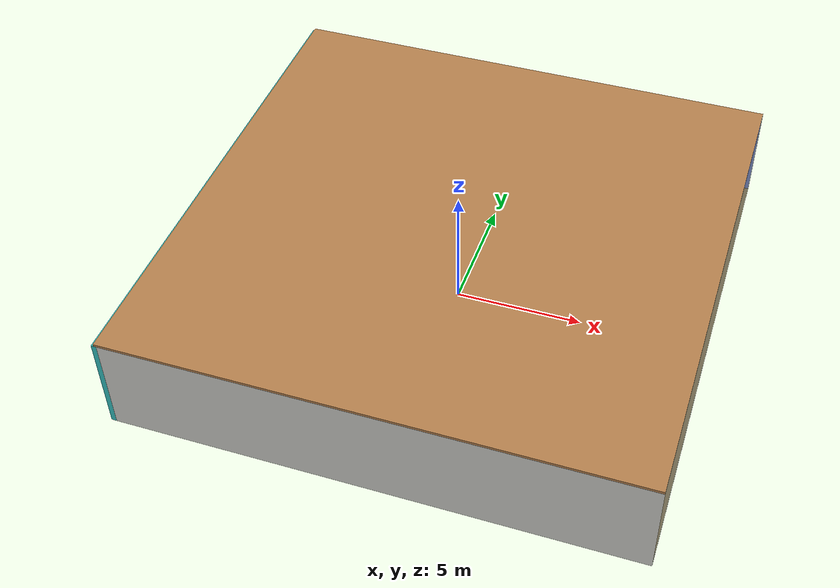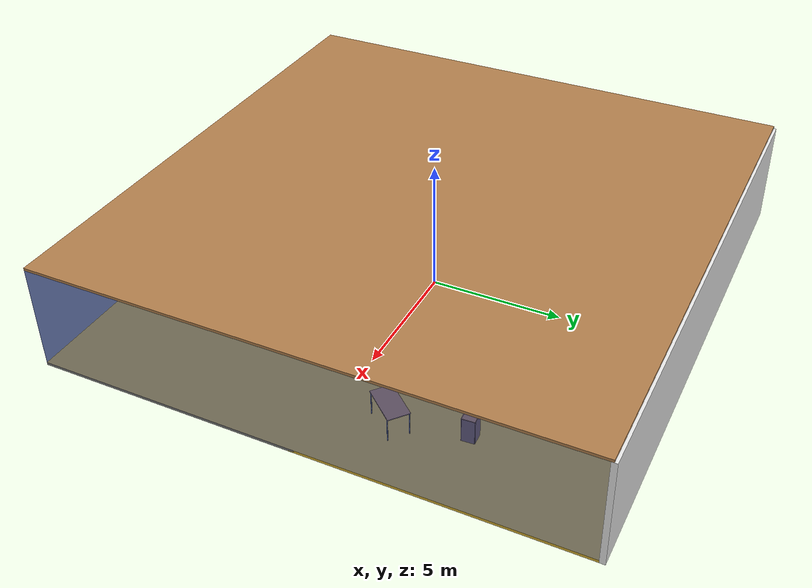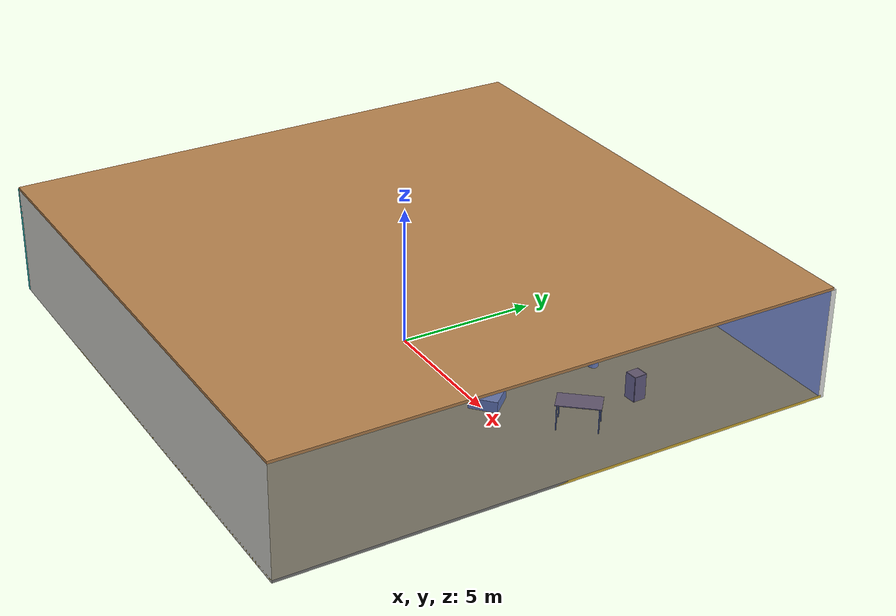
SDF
<sdf version="1.4">
 <world name="default">
  <physics type="ode">
   <max_step_size>0.001</max_step_size>
   <real_time_factor>1</real_time_factor>
   <real_time_update_rate>1000</real_time_update_rate>
   <gravity>0 0 -9.8</gravity>
  </physics>
  <scene><ambient>0.4 0.4 0.4 1</ambient><background>0.7 0.7 0.7 1</background><shadows>1</shadows></scene>
  <model name="Surrounding">
   <static>1</static>
   <link name="Ceiling">
    <collision name="Ceiling_Collision"><geometry><box><size>20 20 0.1</size></box></geometry></collision>
    <visual name="Ceiling_Visual">
     <geometry><box><size>20 20 0.1</size></box></geometry>
     <material>
      <script><uri>file://media/materials/scripts/gazebo.material</uri><name>Gazebo/WoodPallet</name></script>
     </material>
    </visual>
    <pose>0 0 4.05 0 0 0</pose>
   </link>
   <link name="Wall_South">
    <collision name="Wall_South_Collision">
     <geometry><box><size>20 0 4</size></box></geometry>
     <pose>0 0 2 0 -0 0</pose>
    </collision>
    <visual name="Wall_South_Visual">
     <pose>0 0 2 0 -0 0</pose>
     <geometry><box><size>20 0 4</size></box></geometry>
     <material>
      <script><uri>file://media/materials/scripts/gazebo.material</uri><name>Gazebo/CeilingTiled</name></script>
     </material>
    </visual>
    <velocity_decay><linear>0</linear><angular>0</angular></velocity_decay>
    <pose>0 -10 0 0 -0 0</pose>
   </link>
   <link name="Wall_East">
    <collision name="Wall_21_Collision">
     <geometry><box><size>20 0 4</size></box></geometry>
     <pose>0 0 2 0 -0 0</pose>
    </collision>
    <visual name="Wall_21_Visual">
     <pose>0 0 2 0 -0 0</pose>
     <geometry><box><size>20 0 4</size></box></geometry>
     <material>
      <script><uri>file://media/materials/scripts/gazebo.material</uri><name>Gazebo/BlueTransparent</name></script>
     </material>
    </visual>
    <velocity_decay><linear>0</linear><angular>0</angular></velocity_decay>
    <pose>10 0 0 0 -0 1.5708</pose>
   </link>
   <link name="Wall_North">
    <collision name="Wall_22_Collision">
     <geometry><box><size>20 0.2 4</size></box></geometry>
     <pose>0 0 2 0 -0 0</pose>
    </collision>
    <visual name="Wall_22_Visual">
     <pose>0 0 2 0 -0 0</pose>
     <geometry><box><size>20 0.2 4</size></box></geometry>
     <material>
      <script><uri>file://media/materials/scripts/gazebo.material</uri><name>Gazebo/White</name></script>
     </material>
    </visual>
    <velocity_decay><linear>0</linear><angular>0</angular></velocity_decay>
    <pose>0 10 0 0 -0 0</pose>
   </link>
   <link name="Wall_West">
    <collision name="Wall_23_Collision">
     <geometry><box><size>20 0.2 4</size></box></geometry>
     <pose>0 0 2 0 -0 0</pose>
    </collision>
    <visual name="Wall_23_Visual">
     <pose>0 0 2 0 -0 0</pose>
     <geometry><box><size>20 0.2 4</size></box></geometry>
     <material>
      <script>
       <uri>file://media/materials/scripts/gazebo.material</uri>
       <name>Gazebo/TurquoiseGlowOutline</name>
      </script>
     </material>
    </visual>
    <velocity_decay><linear>0</linear><angular>0</angular></velocity_decay>
    <pose>-10 0 0 0 0 -1.5708</pose>
   </link>
   <link name="Ground_link">
    <collision name="collision">
     <pose>0 0 .05 0 -0 0</pose>
     <geometry><box><size>20 20 0.1</size></box></geometry>
    </collision>
    <visual name="visual">
     <pose>0 0 .05 0 -0 0</pose>
     <geometry><box><size>20 20 0.1</size></box></geometry>
     <material>
      <script><uri>file://media/materials/scripts/gazebo.material</uri><name>Gazebo/Gold</name></script>
     </material>
    </visual>
   </link>
   <static>1</static>
  </model>
  <spherical_coordinates>
   <surface_model>EARTH_WGS84</surface_model>
   <latitude_deg>0</latitude_deg>
   <longitude_deg>0</longitude_deg>
   <elevation>0</elevation>
   <heading_deg>0</heading_deg>
  </spherical_coordinates>
  <light name="lightball_0" type="diffuse">
   <diffuse>0.8 0.8 0.8 1</diffuse>
   <specular>0.2 0.2 0.2 1</specular>
   <attenuation>
    <range>100</range>
    <constant>0.7</constant>
    <linear>0.01</linear>
    <quadratic>0.001</quadratic>
   </attenuation>
   <direction>-0.5 0.1 -0.9</direction>
   <pose>7.9216599291 -3.42829957828 1.21490017486 0 0 0</pose>
  </light>
  <light name="lightball_1" type="diffuse">
   <diffuse>0.8 0.8 0.8 1</diffuse>
   <specular>0.2 0.2 0.2 1</specular>
   <attenuation>
    <range>100</range>
    <constant>0.7</constant>
    <linear>0.01</linear>
    <quadratic>0.001</quadratic>
   </attenuation>
   <direction>-0.5 0.1 -0.9</direction>
   <pose>0.111879037403 3.92854694773 3.71542368981 0 0 0</pose>
  </light>
  <light name="lightball_2" type="diffuse">
   <diffuse>0.8 0.8 0.8 1</diffuse>
   <specular>0.2 0.2 0.2 1</specular>
   <attenuation>
    <range>100</range>
    <constant>0.7</constant>
    <linear>0.01</linear>
    <quadratic>0.001</quadratic>
   </attenuation>
   <direction>-0.5 0.1 -0.9</direction>
   <pose>8.20297761521 4.31723876829 1.59319214894 0 0 0</pose>
  </light>
  <include><uri>model://cabinet</uri><pose>-7.79218675732 -7.67870573694 0 0 0 0.850429992638</pose></include>
  <include>
   <uri>model://robocup_3Dsim_goal</uri>
   <pose>-7.53696927483 -1.12120166482 0 0 0 1.50885212092</pose>
  </include>
  <include>
   <uri>model://textured_shapes</uri>
   <pose>-0.795530012375 5.21214372814 0 0 0 1.58975417234</pose>
  </include>
  <include><uri>model://cabinet</uri><pose>1.01799473369 -4.45739391129 0 0 0 0.894933445035</pose></include>
  <include><uri>model://table</uri><pose>2.15831281464 6.70455997428 0 0 0 0.290780689231</pose></include>
  <include>
   <uri>model://textured_shapes</uri>
   <pose>3.87508176345 -0.766744323905 0 0 0 2.29765929587</pose>
  </include>
  <include>
   <uri>model://construction_cone</uri>
   <pose>4.74601965583 4.59404601931 0 0 0 0.317956035205</pose>
  </include>
  <include><uri>model://table</uri><pose>7.58940419965 2.03909719986 0 0 0 0.870028365955</pose></include>
  <include><uri>model://cabinet</uri><pose>7.07796194034 4.62470739909 0 0 0 0.054374237153</pose></include>
 </world>
</sdf>

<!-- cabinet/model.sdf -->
<sdf version="1.5">
  <model name="cabinet">
    <static>true</static>
    <link name="cabinet_bottom_plate">
      <inertial>
        <pose>0 0 -1 0 0 0</pose>
        <inertia>
          <ixx>2.050000</ixx>
          <ixy>0</ixy>
          <ixz>0</ixz>
          <iyy>2.050000</iyy>
          <iyz>0</iyz>
          <izz>2.050000</izz>
        </inertia>
        <mass>25.000000</mass>
      </inertial>
      <collision name="cabinet_bottom_plate_geom">
        <pose>0 0 0.010000 0 0 0</pose>
        <geometry>
          <box>
            <size>0.450000 0.450000 0.020000</size>
          </box>
        </geometry>
      </collision>
      <visual name="cabinet_bottom_plate_geom_visual">
        <pose>0 0 0.010000 0 0 0</pose>
        <geometry>
          <box>
            <size>0.450000 0.450000 0.020000</size>
          </box>
        </geometry>
        <material>
          <script>
            <uri>model://media/materials/scripts/gazebo.material</uri>
            <name>Gazebo/Wood</name>
          </script>
        </material>
      </visual>
      <collision name="cabinet_bottom_plate_geom_cabinet_back_plate">
        <pose>0.235000 0 0.510000 0 0 0</pose>
        <geometry>
          <box>
            <size>0.020000 0.450000 1.020000</size>
          </box>
        </geometry>
      </collision>
      <visual name="cabinet_bottom_plate_geom_cabinet_back_plate_visual">
        <pose>0.235000 0 0.510000 0 0 0</pose>
        <geometry>
          <box>
            <size>0.020000 0.450000 1.020000</size>
          </box>
        </geometry>
        <material>
          <script>
            <uri>model://media/materials/scripts/gazebo.material</uri>
            <name>Gazebo/Wood</name>
          </script>
        </material>
      </visual>
      <collision name="cabinet_bottom_plate_geom_cabinet_left_plate">
        <pose>0 0.235000 0.510000 0 0 0</pose>
        <geometry>
          <box>
            <size>0.450000 0.020000 1.020000</size>
          </box>
        </geometry>
      </collision>
      <visual name="cabinet_bottom_plate_geom_cabinet_left_plate_visual">
        <pose>0 0.235000 0.510000 0 0 0</pose>
        <geometry>
          <box>
            <size>0.450000 0.020000 1.020000</size>
          </box>
        </geometry>
        <material>
          <script>
            <uri>model://media/materials/scripts/gazebo.material</uri>
            <name>Gazebo/Wood</name>
          </script>
        </material>
      </visual>
      <collision name="cabinet_bottom_plate_geom_cabinet_middle_plate">
        <pose>0 0 0.510000 0 0 0</pose>
        <geometry>
          <box>
            <size>0.450000 0.450000 0.020000</size>
          </box>
        </geometry>
      </collision>
      <visual name="cabinet_bottom_plate_geom_cabinet_middle_plate_visual">
        <pose>0 0 0.510000 0 0 0</pose>
        <geometry>
          <box>
            <size>0.450000 0.450000 0.020000</size>
          </box>
        </geometry>
        <material>
          <script>
            <uri>model://media/materials/scripts/gazebo.material</uri>
            <name>Gazebo/Wood</name>
          </script>
        </material>
      </visual>
      <collision name="cabinet_bottom_plate_geom_cabinet_right_plate">
        <pose>0 -0.235000 0.510000 0 0 0</pose>
        <geometry>
          <box>
            <size>0.450000 0.020000 1.020000</size>
          </box>
        </geometry>
      </collision>
      <visual name="cabinet_bottom_plate_geom_cabinet_right_plate_visual">
        <pose>0 -0.235000 0.510000 0 0 0</pose>
        <geometry>
          <box>
            <size>0.450000 0.020000 1.020000</size>
          </box>
        </geometry>
        <material>
          <script>
            <uri>model://media/materials/scripts/gazebo.material</uri>
            <name>Gazebo/Wood</name>
          </script>
        </material>
      </visual>
      <collision name="cabinet_bottom_plate_geom_cabinet_top_plate">
        <pose>0 0 1.010000 0 0 0</pose>
        <geometry>
          <box>
            <size>0.450000 0.450000 0.020000</size>
          </box>
        </geometry>
      </collision>
      <visual name="cabinet_bottom_plate_geom_cabinet_top_plate_visual">
        <pose>0 0 1.010000 0 0 0</pose>
        <geometry>
          <box>
            <size>0.450000 0.450000 0.020000</size>
          </box>
        </geometry>
        <material>
          <script>
            <uri>model://media/materials/scripts/gazebo.material</uri>
            <name>Gazebo/Wood</name>
          </script>
        </material>
      </visual>
    </link>
  </model>
</sdf>

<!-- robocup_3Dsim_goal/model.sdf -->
<sdf version="1.5">
  <model name="robocup_3d_goal">
    <static>true</static>
    <link name="left_post">
      <pose>0 1.05 0.45 0 0 0</pose>
      <collision name="collision">
        <geometry>
          <cylinder>
            <radius>0.05</radius>
            <length>0.9</length>
          </cylinder>
        </geometry>
      </collision>
      <visual name="visual">
        <geometry>
          <cylinder>
            <radius>0.05</radius>
            <length>0.9</length>
          </cylinder>
        </geometry>
        <material>
          <script>
            <uri>file://media/materials/scripts/gazebo.material</uri>
            <name>Gazebo/ZincYellow</name>
          </script>
        </material>
      </visual>
    </link>
    <link name="left_support_horiz_lower">
      <pose>0.30 1.05 0.01 0 0 0</pose>
      <collision name="collision">
        <geometry>
          <box>
            <size>0.50 0.02 0.02</size>
          </box>
        </geometry>
      </collision>
      <visual name="visual">
        <geometry>
          <box>
            <size>0.50 0.02 0.02</size>
          </box>
        </geometry>
        <material>
          <script>
            <uri>file://media/materials/scripts/gazebo.material</uri>
            <name>Gazebo/White</name>
          </script>
        </material>
      </visual>
    </link>
    <link name="left_support_horiz_upper">
      <pose>0.30 1.05 0.79 0 0 0</pose>
      <collision name="collision">
        <geometry>
          <box>
            <size>0.50 0.02 0.02</size>
          </box>
        </geometry>
      </collision>
      <visual name="visual">
        <geometry>
          <box>
            <size>0.50 0.02 0.02</size>
          </box>
        </geometry>
        <material>
          <script>
            <uri>file://media/materials/scripts/gazebo.material</uri>
            <name>Gazebo/White</name>
          </script>
        </material>
      </visual>
    </link>
    <link name="left_support_vertical">
      <pose>0.56 1.05 0.4 0 1.5708 0</pose>
      <collision name="collision">
        <geometry>
          <box>
            <size>0.80 0.02 0.02</size>
          </box>
        </geometry>
      </collision>
      <visual name="visual">
        <geometry>
          <box>
            <size>0.80 0.02 0.02</size>
          </box>
        </geometry>
        <material>
          <script>
            <uri>file://media/materials/scripts/gazebo.material</uri>
            <name>Gazebo/White</name>
          </script>
        </material>
      </visual>
    </link>
    <link name="right_support_horiz_lower">
      <pose>0.30 -1.05 0.01 0 0 0</pose>
      <collision name="collision">
        <geometry>
          <box>
            <size>0.50 0.02 0.02</size>
          </box>
        </geometry>
      </collision>
      <visual name="visual">
        <geometry>
          <box>
            <size>0.50 0.02 0.02</size>
          </box>
        </geometry>
        <material>
          <script>
            <uri>file://media/materials/scripts/gazebo.material</uri>
            <name>Gazebo/White</name>
          </script>
        </material>
      </visual>
    </link>
    <link name="right_support_horiz_upper">
      <pose>0.30 -1.05 0.79 0 0 0</pose>
      <collision name="collision">
        <geometry>
          <box>
            <size>0.50 0.02 0.02</size>
          </box>
        </geometry>
      </collision>
      <visual name="visual">
        <geometry>
          <box>
            <size>0.50 0.02 0.02</size>
          </box>
        </geometry>
        <material>
          <script>
            <uri>file://media/materials/scripts/gazebo.material</uri>
            <name>Gazebo/White</name>
          </script>
        </material>
      </visual>
    </link>
    <link name="right_support_vertical">
      <pose>0.56 -1.05 0.4 0 1.5708 0</pose>
      <collision name="collision">
        <geometry>
          <box>
            <size>0.80 0.02 0.02</size>
          </box>
        </geometry>
      </collision>
      <visual name="visual">
        <geometry>
          <box>
            <size>0.80 0.02 0.02</size>
          </box>
        </geometry>
        <material>
          <script>
            <uri>file://media/materials/scripts/gazebo.material</uri>
            <name>Gazebo/White</name>
          </script>
        </material>
      </visual>
    </link>
    <link name="center_support_horiz_lower">
      <pose>0.56 0 0.01 0 1.5708 0</pose>
      <collision name="collision">
        <geometry>
          <box>
            <size>0.02 2.08 0.02</size>
          </box>
        </geometry>
      </collision>
      <visual name="visual">
        <geometry>
          <box>
            <size>0.02 2.08 0.02</size>
          </box>
        </geometry>
        <material>
          <script>
            <uri>file://media/materials/scripts/gazebo.material</uri>
            <name>Gazebo/White</name>
          </script>
        </material>
      </visual>
    </link>
    <link name="center_support_horiz_upper">
      <pose>0.56 0 0.79 0 1.5708 0</pose>
      <collision name="collision">
        <geometry>
          <box>
            <size>0.02 2.08 0.02</size>
          </box>
        </geometry>
      </collision>
      <visual name="visual">
        <geometry>
          <box>
            <size>0.02 2.08 0.02</size>
          </box>
        </geometry>
        <material>
          <script>
            <uri>file://media/materials/scripts/gazebo.material</uri>
            <name>Gazebo/White</name>
          </script>
        </material>
      </visual>
    </link>
    <link name="right_post">
      <pose>0 -1.05 0.45 0 0 0</pose>
      <collision name="collision">
        <geometry>
          <cylinder>
            <radius>0.05</radius>
            <length>0.9</length>
          </cylinder>
        </geometry>
      </collision>
      <visual name="visual">
        <geometry>
          <cylinder>
            <radius>0.05</radius>
            <length>0.9</length>
          </cylinder>
        </geometry>
        <material>
          <script>
            <uri>file://media/materials/scripts/gazebo.material</uri>
            <name>Gazebo/ZincYellow</name>
          </script>
        </material>
      </visual>
    </link>
    <link name="crossbar">
      <pose>0 0 0.85 1.57 1.57 0</pose>
      <collision name="collision">
        <geometry>
          <cylinder>
            <radius>0.05</radius>
            <length>2.0</length>
          </cylinder>
        </geometry>
      </collision>
      <visual name="visual">
        <geometry>
          <cylinder>
            <radius>0.05</radius>
            <length>2.0</length>
          </cylinder>
        </geometry>
        <material>
          <script>
            <uri>file://media/materials/scripts/gazebo.material</uri>
            <name>Gazebo/ZincYellow</name>
          </script>
        </material>
      </visual>
    </link>
    <link name="center_net">
      <pose>0.56 0 0.40 0 0 0</pose>
      <collision name="collision">
        <geometry>
          <box>
            <size>0.01 2.1 0.80</size>
          </box>
        </geometry>
      </collision>
      <visual name="visual">
        <geometry>
          <box>
            <size>0.01 2.1 0.80</size>
          </box>
        </geometry>
        <material>
          <script>
            <uri>model://../model_source/models/robocup09_spl_field/materials/scripts/</uri>
            <uri>model://../model_source/models/robocup09_spl_field/materials/textures/</uri>
            <name>RoboCup/Net</name>
          </script>
        </material>
      </visual>
    </link>
    <link name="left_net">
      <pose>0.30 1.05 0.40 0 0 0</pose>
      <collision name="collision">
        <geometry>
          <box>
            <size>0.50 0.01 0.76</size>
          </box>
        </geometry>
      </collision>
      <visual name="visual">
        <geometry>
          <box>
            <size>0.50 0.01 0.76</size>
          </box>
        </geometry>
        <material>
          <script>
            <uri>model://../model_source/models/robocup09_spl_field/materials/scripts/</uri>
            <uri>model://../model_source/models/robocup09_spl_field/materials/textures/</uri>
            <name>RoboCup/Net</name>
          </script>
        </material>
      </visual>
    </link>
    <link name="right_net">
      <pose>0.30 -1.05 0.40 0 0 0</pose>
      <collision name="collision">
        <geometry>
          <box>
            <size>0.50 0.01 0.76</size>
          </box>
        </geometry>
      </collision>
      <visual name="visual">
        <geometry>
          <box>
            <size>0.50 0.01 0.76</size>
          </box>
        </geometry>
        <material>
          <script>
            <uri>model://../model_source/models/robocup09_spl_field/materials/scripts/</uri>
            <uri>model://../model_source/models/robocup09_spl_field/materials/textures/</uri>
            <name>RoboCup/Net</name>
          </script>
        </material>
      </visual>
    </link>
  </model>
</sdf>

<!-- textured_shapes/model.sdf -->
<sdf version="1.6">
  <model name="textured_shapes">
    <pose>0 0 0.5 0 0 0</pose>
    <link name="box">
      <pose>0 -1.5 0 0 0 0</pose>
      <collision name="collision">
        <geometry>
          <box>
            <size>1 1 1</size>
          </box>
        </geometry>
      </collision>
      <visual name="visual">
        <geometry>
          <box>
            <size>1 1 1</size>
          </box>
        </geometry>
        <material>
          <script>
            <uri>model://../model_source/models/textured_shapes/materials/scripts</uri>
            <uri>model://../model_source/models/textured_shapes/materials/textures</uri>
            <name>TexturedShape/Squares</name>
          </script>
        </material>
      </visual>
    </link>
    <link name="sphere">
      <collision name="collision">
        <geometry>
          <sphere>
            <radius>0.5</radius>
          </sphere>
        </geometry>
      </collision>
      <visual name="visual">
        <geometry>
          <sphere>
            <radius>0.5</radius>
          </sphere>
        </geometry>
        <material>
          <script>
            <uri>model://../model_source/models/textured_shapes/materials/scripts</uri>
            <uri>model://../model_source/models/textured_shapes/materials/textures</uri>
            <name>TexturedShape/Squares</name>
          </script>
        </material>
      </visual>
    </link>
    <link name="cylinder">
      <pose>0 1.5 0 0 0 0</pose>
      <collision name="collision">
        <geometry>
          <cylinder>
            <radius>0.5</radius>
            <length>1</length>
          </cylinder>
        </geometry>
      </collision>
      <visual name="visual">
        <geometry>
          <cylinder>
            <radius>0.5</radius>
            <length>1</length>
          </cylinder>
        </geometry>
        <material>
          <script>
            <uri>model://../model_source/models/textured_shapes/materials/scripts</uri>
            <uri>model://../model_source/models/textured_shapes/materials/textures</uri>
            <name>TexturedShape/Squares</name>
          </script>
        </material>
      </visual>
    </link>
  </model>
</sdf>

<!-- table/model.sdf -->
<sdf version="1.5">
  <model name="table">
    <static>true</static>
    <link name="link">
      <collision name="surface">
        <pose>0 0 1.0 0 0 0</pose>
        <geometry>
          <box>
            <size>1.5 0.8 0.03</size>
          </box>
        </geometry>
        <surface>
          <friction>
            <ode>
              <mu>0.6</mu>
              <mu2>0.6</mu2>
            </ode>
          </friction>
        </surface>
      </collision>
      <visual name="visual1">
        <pose>0 0 1.0 0 0 0</pose>
        <geometry>
          <box>
            <size>1.5 0.8 0.03</size>
          </box>
        </geometry>
        <material>
          <script>
            <uri>model://media/materials/scripts/gazebo.material</uri>
            <name>Gazebo/Wood</name>
          </script>
        </material>
      </visual>
      <collision name="front_left_leg">
        <pose>0.68 0.38 0.5 0 0 0</pose>
        <geometry>
          <cylinder>
            <radius>0.02</radius>
            <length>1.0</length>
          </cylinder>
        </geometry>
      </collision>
      <visual name="front_left_leg">
        <pose>0.68 0.38 0.5 0 0 0</pose>
        <geometry>
          <cylinder>
            <radius>0.02</radius>
            <length>1.0</length>
          </cylinder>
        </geometry>
        <material>
          <script>
            <uri>model://media/materials/scripts/gazebo.material</uri>
            <name>Gazebo/Grey</name>
          </script>
        </material>
      </visual>
      <collision name="front_right_leg">
        <pose>0.68 -0.38 0.5 0 0 0</pose>
        <geometry>
          <cylinder>
            <radius>0.02</radius>
            <length>1.0</length>
          </cylinder>
        </geometry>
      </collision>
      <visual name="front_right_leg">
        <pose>0.68 -0.38 0.5 0 0 0</pose>
        <geometry>
          <cylinder>
            <radius>0.02</radius>
            <length>1.0</length>
          </cylinder>
        </geometry>
        <material>
          <script>
            <uri>model://media/materials/scripts/gazebo.material</uri>
            <name>Gazebo/Grey</name>
          </script>
        </material>
      </visual>
      <collision name="back_right_leg">
        <pose>-0.68 -0.38 0.5 0 0 0</pose>
        <geometry>
          <cylinder>
            <radius>0.02</radius>
            <length>1.0</length>
          </cylinder>
        </geometry>
      </collision>
      <visual name="back_right_leg">
        <pose>-0.68 -0.38 0.5 0 0 0</pose>
        <geometry>
          <cylinder>
            <radius>0.02</radius>
            <length>1.0</length>
          </cylinder>
        </geometry>
        <material>
          <script>
            <uri>model://media/materials/scripts/gazebo.material</uri>
            <name>Gazebo/Grey</name>
          </script>
        </material>
      </visual>
      <collision name="back_left_leg">
        <pose>-0.68 0.38 0.5 0 0 0</pose>
        <geometry>
          <cylinder>
            <radius>0.02</radius>
            <length>1.0</length>
          </cylinder>
        </geometry>
      </collision>
      <visual name="back_left_leg">
        <pose>-0.68 0.38 0.5 0 0 0</pose>
        <geometry>
          <cylinder>
            <radius>0.02</radius>
            <length>1.0</length>
          </cylinder>
        </geometry>
        <material>
          <script>
            <uri>model://media/materials/scripts/gazebo.material</uri>
            <name>Gazebo/Grey</name>
          </script>
        </material>
      </visual>
    </link>
  </model>
</sdf>

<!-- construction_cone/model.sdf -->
<sdf version="1.5">
  <model name="Construction Cone">
    <link name="link">
      <collision name="collision">
        <geometry>
          <mesh>
            <scale>10 10 10</scale>
            <uri>file://isr-testbed/construction_cone/meshes/construction_cone.dae</uri>
          </mesh>
        </geometry>
      </collision>
      <visual name="visual">
        <geometry>
          <mesh>
            <scale>10 10 10</scale>
            <uri>file://isr-testbed/construction_cone/meshes/construction_cone.dae</uri>
          </mesh>
        </geometry>
      </visual>
    </link>
  </model>
</sdf>
